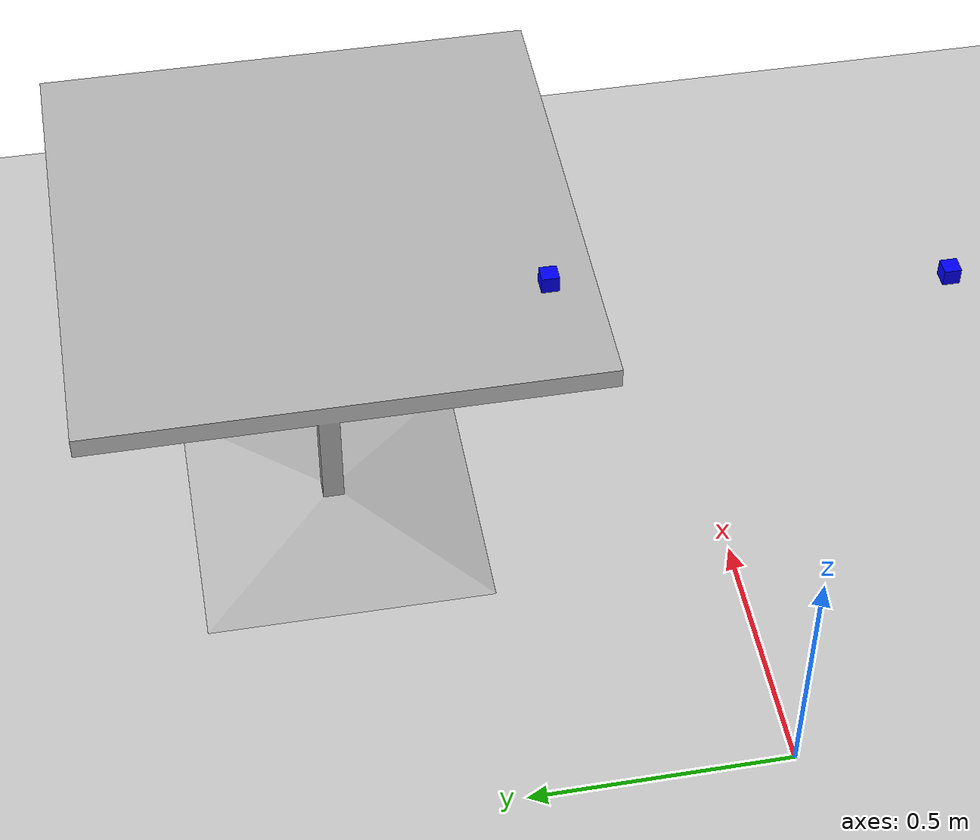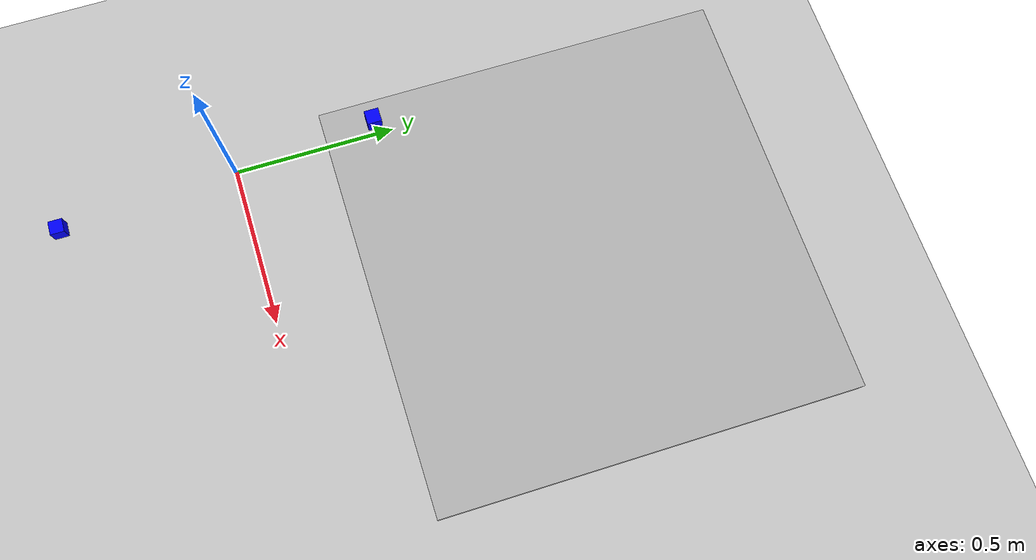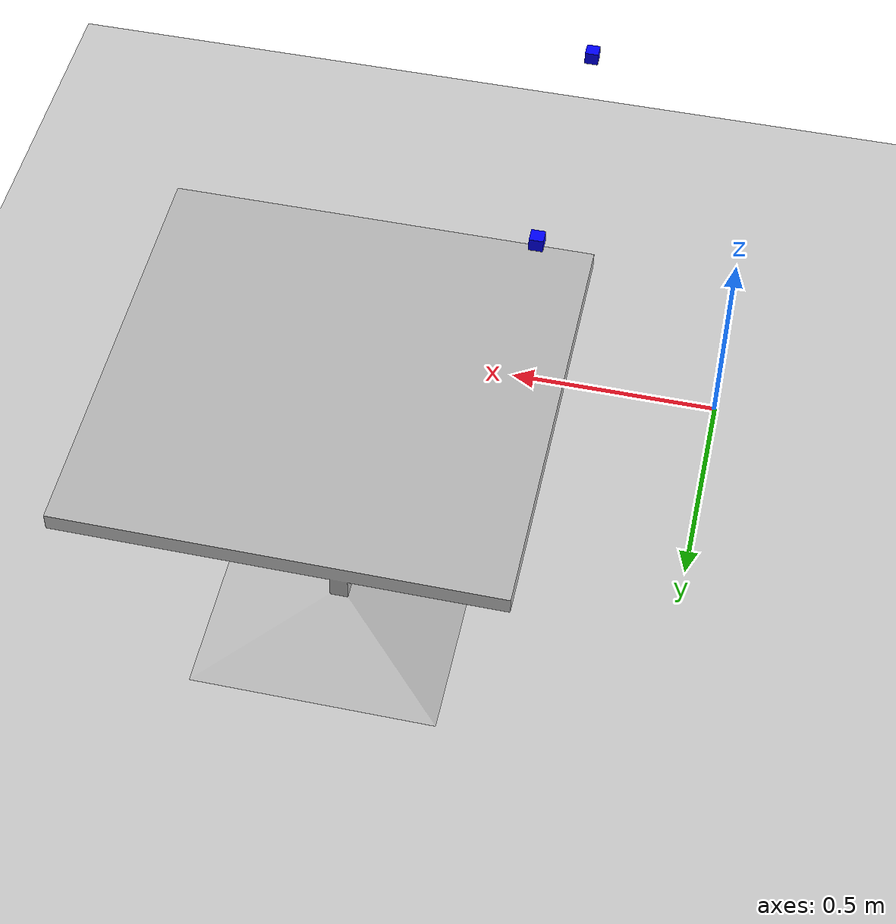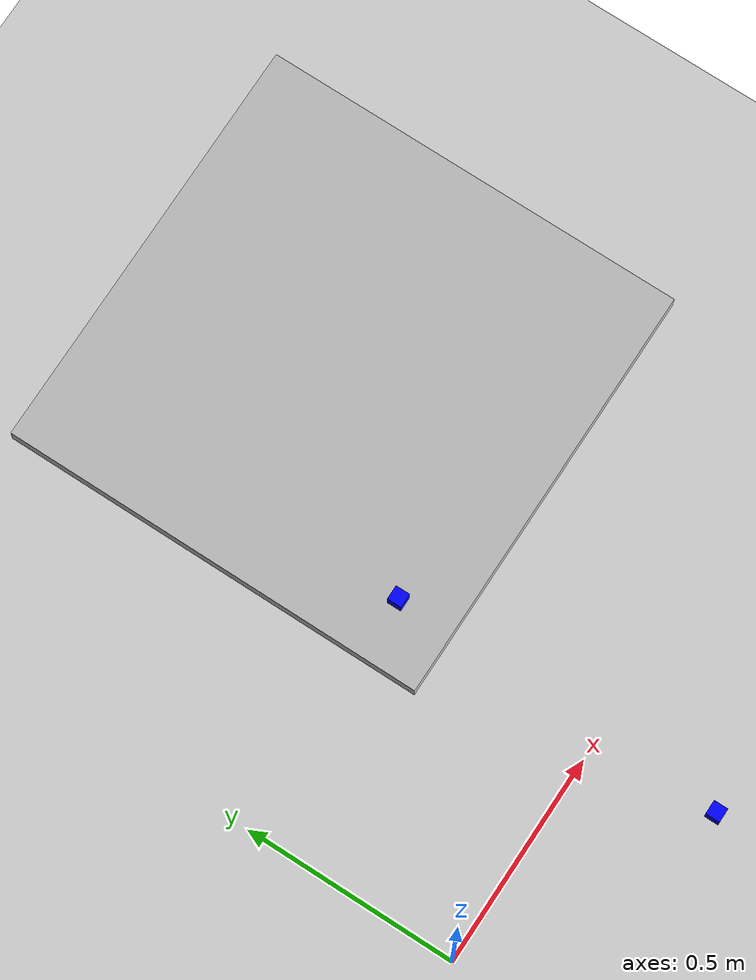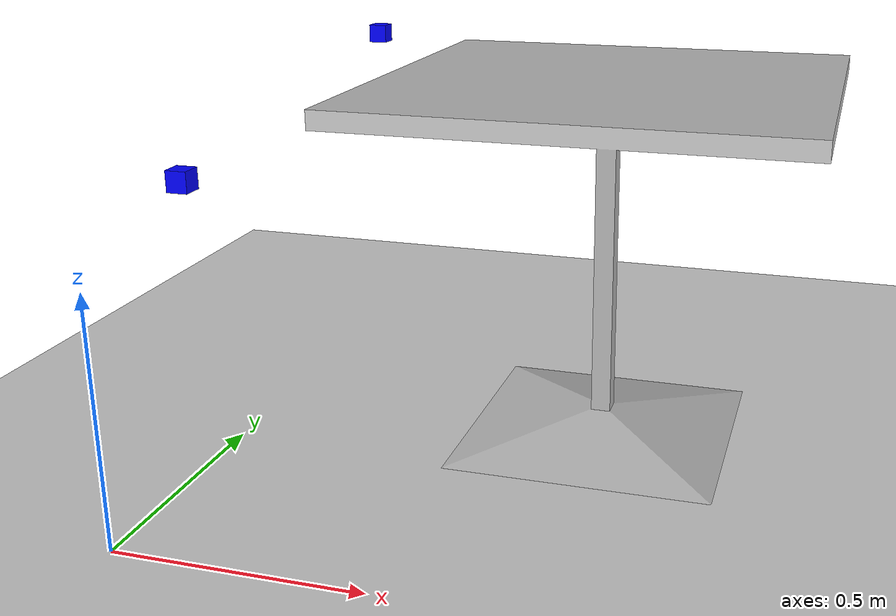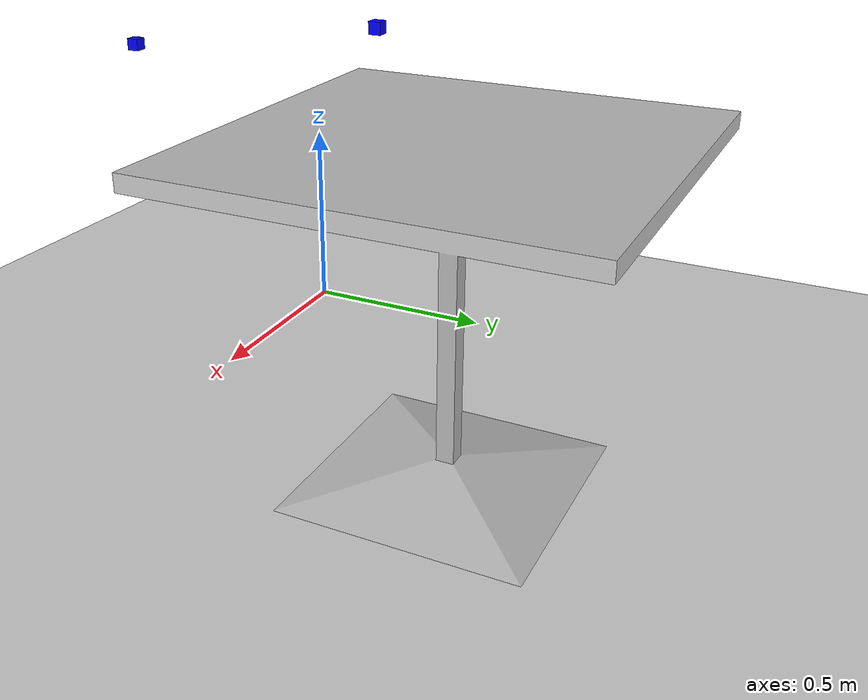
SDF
<sdf version="1.7">
 <world name="default">
  <light name="sun" type="directional">
   <pose>0 0 10 0 -0 0</pose>
   <diffuse>0.8 0.8 0.8 1</diffuse>
   <specular>0.2 0.2 0.2 1</specular>
   <attenuation>
    <range>1000</range>
    <constant>0.9</constant>
    <linear>0.01</linear>
    <quadratic>0.001</quadratic>
   </attenuation>
   <direction>-0.5 0.1 -0.9</direction>
   <spot><inner_angle>0</inner_angle><outer_angle>0</outer_angle><falloff>0</falloff></spot>
  </light>
  <model name="ground_plane">
   <static>1</static>
   <link name="link">
    <collision name="collision">
     <geometry><plane><normal>0 0 1</normal><size>100 100</size></plane></geometry>
     <surface>
      <contact><collide_bitmask>65535</collide_bitmask></contact>
      <friction><ode><mu>100</mu><mu2>50</mu2></ode></friction>
     </surface>
    </collision>
    <visual name="visual">
     <cast_shadows>0</cast_shadows>
     <geometry><plane><normal>0 0 1</normal><size>100 100</size></plane></geometry>
     <material>
      <script><uri>file://media/materials/scripts/gazebo.material</uri><name>Gazebo/Grey</name></script>
     </material>
    </visual>
   </link>
  </model>
  <gravity>0 0 -9.8</gravity>
  <magnetic_field>6e-06 2.3e-05 -4.2e-05</magnetic_field>
  <atmosphere type="adiabatic"/>
  <physics type="ode">
   <max_step_size>0.001</max_step_size>
   <real_time_factor>1</real_time_factor>
   <real_time_update_rate>1000</real_time_update_rate>
  </physics>
  <scene><ambient>0.4 0.4 0.4 1</ambient><background>0.7 0.7 0.7 1</background><shadows>1</shadows></scene>
  <spherical_coordinates>
   <surface_model>EARTH_WGS84</surface_model>
   <latitude_deg>0</latitude_deg>
   <longitude_deg>0</longitude_deg>
   <elevation>0</elevation>
   <heading_deg>0</heading_deg>
  </spherical_coordinates>
  <model name="cafe_table">
   <static>1</static>
   <link name="link">
    <collision name="surface">
     <pose>0 0 0.755 0 -0 0</pose>
     <geometry><box><size>0.913 0.913 0.04</size></box></geometry>
     <surface><friction><ode><mu>1000.0</mu><mu2>1000.0</mu2></ode></friction></surface>
    </collision>
    <collision name="column">
     <pose>0 0 0.37 0 -0 0</pose>
     <geometry><box><size>0.042 0.042 0.74</size></box></geometry>
    </collision>
    <collision name="base">
     <pose>0 0 0.02 0 -0 0</pose>
     <geometry><box><size>0.56 0.56 0.04</size></box></geometry>
    </collision>
    <visual name="visual">
     <geometry><mesh><uri>model://cafe_table/meshes/cafe_table.dae</uri></mesh></geometry>
    </visual>
   </link>
   <pose>0.75 0.75 0 0 -0 0</pose>
  </model>
  <model name="small_cube">
   <pose>0.4 0.4 0.9 0 0 0</pose>
   <static>false</static>
   <link name="link">
    <inertial>
     <mass>0.01</mass>
     <inertia><ixx>0.001</ixx><ixy>0.0</ixy><ixz>0.0</ixz><iyy>0.001</iyy><iyz>0.0</iyz><izz>0.001</izz></inertia>
    </inertial>
    <velocity_decay><linear>0.0</linear><angular>0.5</angular></velocity_decay>
    <collision name="collision">
     <geometry><box><size>0.03 0.03 0.03</size></box></geometry>
     <surface><friction><ode><mu>1.0</mu><mu2>1.0</mu2></ode></friction></surface>
    </collision>
    <visual name="visual">
     <geometry><box><size>0.03 0.03 0.03</size></box></geometry>
     <material><ambient>0 0 1 1</ambient><diffuse>0 0 1 1</diffuse></material>
    </visual>
   </link>
  </model>
  <model name="other_cube">
   <pose>0.4 -0.3 0.8 0 0 0</pose>
   <static>true</static>
   <link name="link">
    <gravity>false</gravity>
    <collision name="collision"><geometry><box><size>0.03 0.03 0.03</size></box></geometry></collision>
    <visual name="visual">
     <geometry><box><size>0.03 0.03 0.03</size></box></geometry>
     <material><ambient>0 0 1 1</ambient><diffuse>0 0 1 1</diffuse></material>
    </visual>
   </link>
  </model>
 </world>
</sdf>
